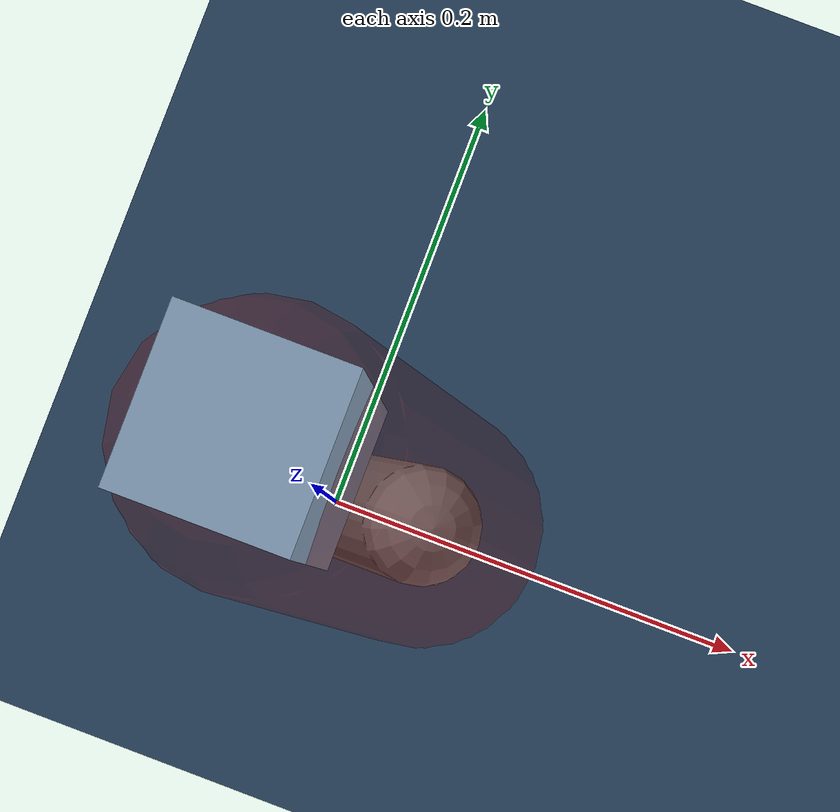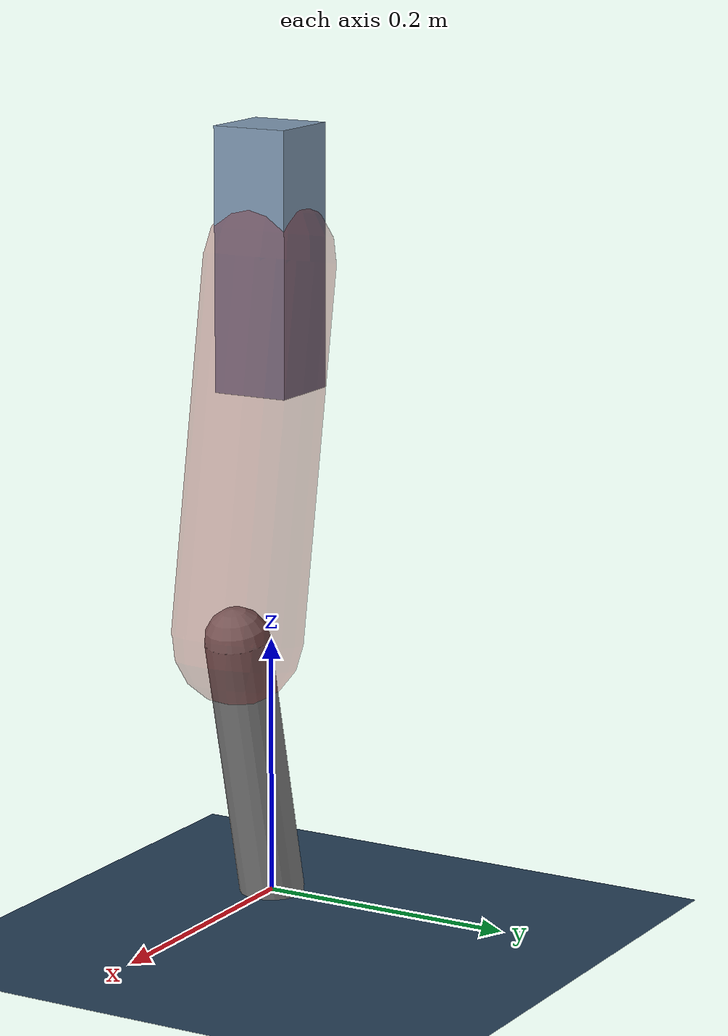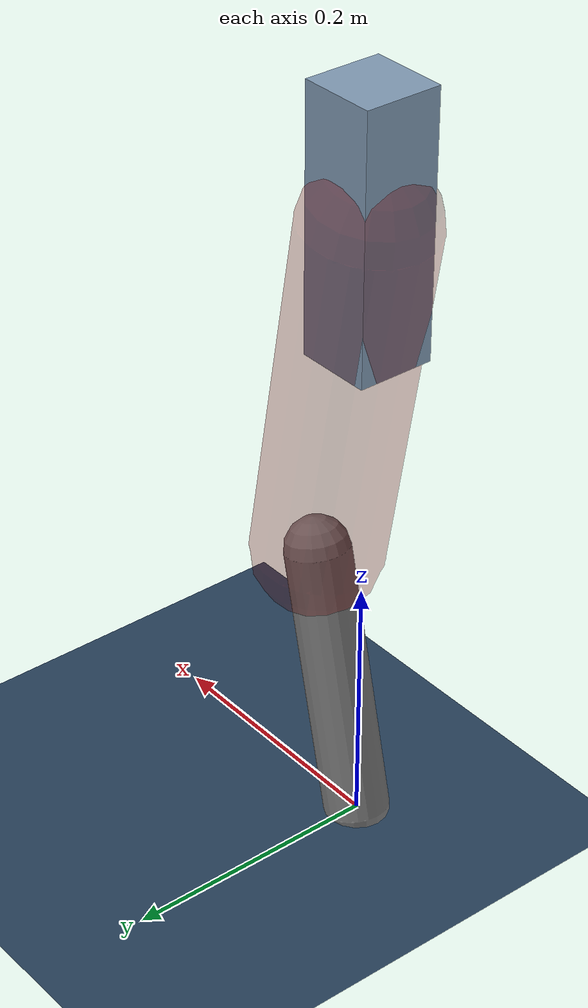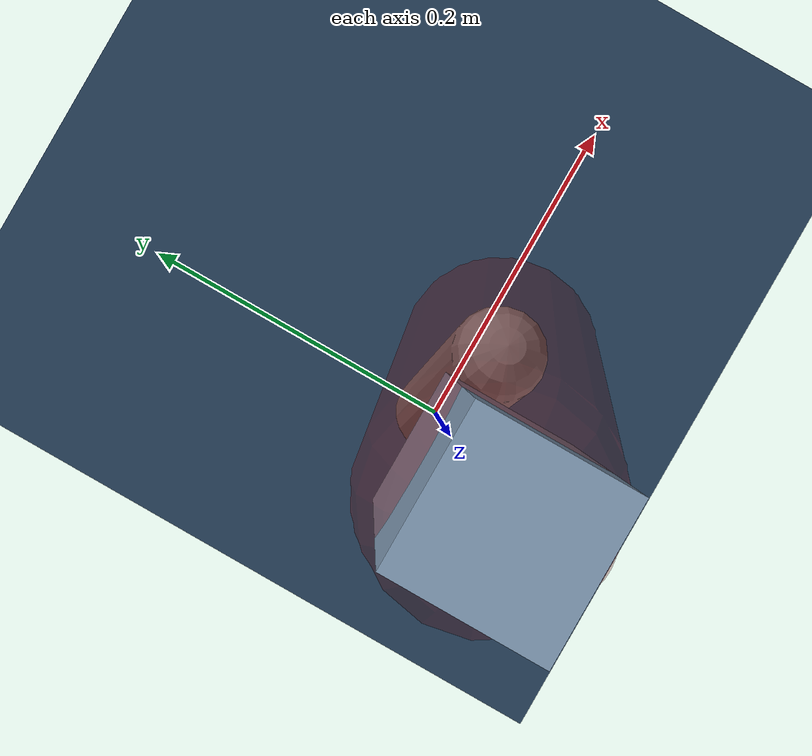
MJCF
<mujoco model="Hopper2D">
	<compiler inertiafromgeom="true" angle="radian" />
	<option timestep="0.001" integrator="implicit" cone="elliptic" solver="Newton" tolerance="1e-10" />

	<default>
		<geom contype="1" conaffinity="1" condim="3" friction="2 0.005 0.0001" solref="0.005 1" />
		<joint limited="true" damping="0.1" />
	</default>

	<asset>
		<texture name="skybox" type="skybox" builtin="gradient" rgb1=".4 .6 .8" rgb2="0 0 0" width="800" height="800" />
		<texture name="grid" type="2d" builtin="checker" rgb1=".1 .2 .3" rgb2=".2 .3 .4" width="300" height="300" mark="edge" markrgb=".2 .3 .4" />
		<material name="ground" texture="grid" texrepeat="1 1" texuniform="true" reflectance="0.1" />
		<material name="leg" rgba="0.5 0.6 0.7 1" />
	</asset>

	<worldbody>

		<geom name="floor" type="plane" size="5 5 0.25" material="ground" />

		<light directional="false" diffuse="0.8 0.8 0.8" specular="0.3 0.3 0.3" pos="0 0 2" dir="0 0 -1" />
		<light mode="targetbodycom" target="base" directional="false" diffuse="0.8 0.8 0.8" specular="0.3 0.3 0.3" pos="0 0 2" dir="0 0 -1" />

		<camera name="fixed" pos="0 -2 1" xyaxes="1 0 0 0 0 1" />
		<camera name="tracking" mode="trackcom" pos="0 -3 1" />

		<body name="root" pos="0 0 0.49343643343425025">
			<joint name="slide_x" type="slide" axis="1 0 0" range="-100 100" />
			<joint name="slide_z" type="slide" axis="0 0 1" range="0 10" />

			<body name="base" pos="0 0 0">
				<geom name="torso" type="box" size="0.03 0.03 0.1" mass="2.8339999999999996" material="leg" />

				<body name="link1" pos="0 0 0" euler="0 1.3975829999806808 0">
					<joint type="hinge" axis="0 -1 0" pos="0 0 0" name="hinge1" limited="true" range="-3.14 3.14" stiffness="0" damping="0.1" />
					<geom name="thigh" type="capsule" fromto="0 0 0 0.2867252913800145 0 0" size="0.05" rgba="0.5 0 0 0.3" mass="0.9530582867260392" />

					<body name="link2" pos="0.2867252913800145 0 0" euler="0 0.40326734286616156 0">
						<joint type="hinge" axis="0 -1 0" pos="0 0 0" name="hinge2" limited="true" range="-3.14 3.14" stiffness="0" damping="0.1" />
						<geom name="shank" type="capsule" fromto="0 0 0 0.21671114205423575 0 0" size="0.025" mass="0.4149400278488122" />

					</body>
				</body>
			</body>
		</body>
	</worldbody>

	<actuator>
		<motor name="torque1" joint="hinge1" ctrlrange="-114.03085120843556 114.03085120843556" ctrllimited="true" gear="1" />
		<motor name="torque2" joint="hinge2" ctrlrange="-98.13055327465202 98.13055327465202" ctrllimited="true" gear="1" />
	</actuator>
</mujoco>
